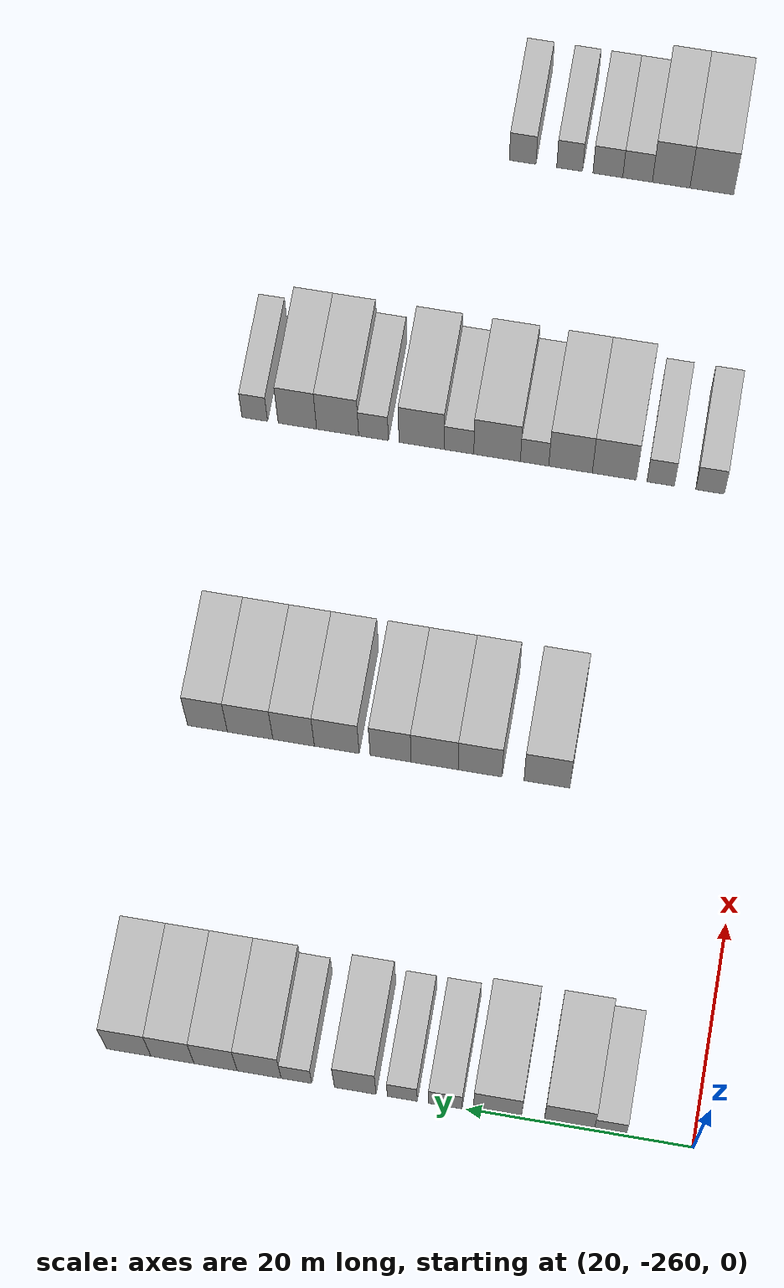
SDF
<sdf version="1.6">
 <world name="default">
  <model name="building_52">
   <static>1</static>
   <pose>25.0000 -252.6086 0 0.000000 0.000000 0.000000</pose>
   <link name="link">
    <pose>0 0 3.00 0 0 0</pose>
    <collision name="collision"><geometry><box><size>10.0000 2.7881 6.0000</size></box></geometry></collision>
    <visual name="visual">
     <cast_shadows>0</cast_shadows>
     <geometry><box><size>10.0000 2.7881 6.0000</size></box></geometry>
     <material>
      <script>
       <uri>model://HANNAS_wall/materials/scripts</uri>
       <uri>model://HANNAS_wall/materials/textures</uri>
       <name>vrc/HANNAS_wall</name>
      </script>
     </material>
    </visual>
   </link>
  </model>
  <model name="building_53">
   <static>1</static>
   <pose>25.0000 -249.0260 0 0.000000 0.000000 0.000000</pose>
   <link name="link">
    <pose>0 0 4.50 0 0 0</pose>
    <collision name="collision"><geometry><box><size>10.0000 4.3770 9.0000</size></box></geometry></collision>
    <visual name="visual">
     <cast_shadows>0</cast_shadows>
     <geometry><box><size>10.0000 4.3770 9.0000</size></box></geometry>
     <material>
      <script>
       <uri>model://HANNAS_wall/materials/scripts</uri>
       <uri>model://HANNAS_wall/materials/textures</uri>
       <name>vrc/HANNAS_wall</name>
      </script>
     </material>
    </visual>
   </link>
  </model>
  <model name="building_54">
   <static>1</static>
   <pose>25.0000 -242.7408 0 0.000000 0.000000 0.000000</pose>
   <link name="link">
    <pose>0 0 4.50 0 0 0</pose>
    <collision name="collision"><geometry><box><size>10.0000 4.1934 9.0000</size></box></geometry></collision>
    <visual name="visual">
     <cast_shadows>0</cast_shadows>
     <geometry><box><size>10.0000 4.1934 9.0000</size></box></geometry>
     <material>
      <script>
       <uri>model://HANNAS_wall/materials/scripts</uri>
       <uri>model://HANNAS_wall/materials/textures</uri>
       <name>vrc/HANNAS_wall</name>
      </script>
     </material>
    </visual>
   </link>
  </model>
  <model name="building_55">
   <static>1</static>
   <pose>25.0000 -238.1700 0 0.000000 0.000000 0.000000</pose>
   <link name="link">
    <pose>0 0 3.00 0 0 0</pose>
    <collision name="collision"><geometry><box><size>10.0000 2.9482 6.0000</size></box></geometry></collision>
    <visual name="visual">
     <cast_shadows>0</cast_shadows>
     <geometry><box><size>10.0000 2.9482 6.0000</size></box></geometry>
     <material>
      <script>
       <uri>model://HANNAS_wall/materials/scripts</uri>
       <uri>model://HANNAS_wall/materials/textures</uri>
       <name>vrc/HANNAS_wall</name>
      </script>
     </material>
    </visual>
   </link>
  </model>
  <model name="building_56">
   <static>1</static>
   <pose>25.0000 -234.3784 0 0.000000 0.000000 0.000000</pose>
   <link name="link">
    <pose>0 0 3.00 0 0 0</pose>
    <collision name="collision"><geometry><box><size>10.0000 2.6350 6.0000</size></box></geometry></collision>
    <visual name="visual">
     <cast_shadows>0</cast_shadows>
     <geometry><box><size>10.0000 2.6350 6.0000</size></box></geometry>
     <material>
      <script>
       <uri>model://HANNAS_wall/materials/scripts</uri>
       <uri>model://HANNAS_wall/materials/textures</uri>
       <name>vrc/HANNAS_wall</name>
      </script>
     </material>
    </visual>
   </link>
  </model>
  <model name="building_57">
   <static>1</static>
   <pose>25.0000 -230.2231 0 0.000000 0.000000 0.000000</pose>
   <link name="link">
    <pose>0 0 4.50 0 0 0</pose>
    <collision name="collision"><geometry><box><size>10.0000 3.6756 9.0000</size></box></geometry></collision>
    <visual name="visual">
     <cast_shadows>0</cast_shadows>
     <geometry><box><size>10.0000 3.6756 9.0000</size></box></geometry>
     <material>
      <script>
       <uri>model://HANNAS_wall/materials/scripts</uri>
       <uri>model://HANNAS_wall/materials/textures</uri>
       <name>vrc/HANNAS_wall</name>
      </script>
     </material>
    </visual>
   </link>
  </model>
  <model name="building_58">
   <static>1</static>
   <pose>25.0000 -225.0237 0 0.000000 0.000000 0.000000</pose>
   <link name="link">
    <pose>0 0 3.00 0 0 0</pose>
    <collision name="collision"><geometry><box><size>10.0000 2.7231 6.0000</size></box></geometry></collision>
    <visual name="visual">
     <cast_shadows>0</cast_shadows>
     <geometry><box><size>10.0000 2.7231 6.0000</size></box></geometry>
     <material>
      <script>
       <uri>model://HANNAS_wall/materials/scripts</uri>
       <uri>model://HANNAS_wall/materials/textures</uri>
       <name>vrc/HANNAS_wall</name>
      </script>
     </material>
    </visual>
   </link>
  </model>
  <model name="building_59">
   <static>1</static>
   <pose>25.0000 -221.7079 0 0.000000 0.000000 0.000000</pose>
   <link name="link">
    <pose>0 0 4.50 0 0 0</pose>
    <collision name="collision"><geometry><box><size>10.0000 3.9086 9.0000</size></box></geometry></collision>
    <visual name="visual">
     <cast_shadows>0</cast_shadows>
     <geometry><box><size>10.0000 3.9086 9.0000</size></box></geometry>
     <material>
      <script>
       <uri>model://HANNAS_wall/materials/scripts</uri>
       <uri>model://HANNAS_wall/materials/textures</uri>
       <name>vrc/HANNAS_wall</name>
      </script>
     </material>
    </visual>
   </link>
  </model>
  <model name="building_60">
   <static>1</static>
   <pose>25.0000 -217.8412 0 0.000000 0.000000 0.000000</pose>
   <link name="link">
    <pose>0 0 4.50 0 0 0</pose>
    <collision name="collision"><geometry><box><size>10.0000 3.8248 9.0000</size></box></geometry></collision>
    <visual name="visual">
     <cast_shadows>0</cast_shadows>
     <geometry><box><size>10.0000 3.8248 9.0000</size></box></geometry>
     <material>
      <script>
       <uri>model://HANNAS_wall/materials/scripts</uri>
       <uri>model://HANNAS_wall/materials/textures</uri>
       <name>vrc/HANNAS_wall</name>
      </script>
     </material>
    </visual>
   </link>
  </model>
  <model name="building_61">
   <static>1</static>
   <pose>25.0000 -214.0150 0 0.000000 0.000000 0.000000</pose>
   <link name="link">
    <pose>0 0 4.50 0 0 0</pose>
    <collision name="collision"><geometry><box><size>10.0000 3.8276 9.0000</size></box></geometry></collision>
    <visual name="visual">
     <cast_shadows>0</cast_shadows>
     <geometry><box><size>10.0000 3.8276 9.0000</size></box></geometry>
     <material>
      <script>
       <uri>model://HANNAS_wall/materials/scripts</uri>
       <uri>model://HANNAS_wall/materials/textures</uri>
       <name>vrc/HANNAS_wall</name>
      </script>
     </material>
    </visual>
   </link>
  </model>
  <model name="building_62">
   <static>1</static>
   <pose>25.0000 -210.1196 0 0.000000 0.000000 0.000000</pose>
   <link name="link">
    <pose>0 0 4.50 0 0 0</pose>
    <collision name="collision"><geometry><box><size>10.0000 3.9632 9.0000</size></box></geometry></collision>
    <visual name="visual">
     <cast_shadows>0</cast_shadows>
     <geometry><box><size>10.0000 3.9632 9.0000</size></box></geometry>
     <material>
      <script>
       <uri>model://HANNAS_wall/materials/scripts</uri>
       <uri>model://HANNAS_wall/materials/textures</uri>
       <name>vrc/HANNAS_wall</name>
      </script>
     </material>
    </visual>
   </link>
  </model>
  <model name="building_270">
   <static>1</static>
   <pose>55.0000 -242.3159 0 0.000000 0.000000 0.000000</pose>
   <link name="link">
    <pose>0 0 4.50 0 0 0</pose>
    <collision name="collision"><geometry><box><size>10.0000 4.1535 9.0000</size></box></geometry></collision>
    <visual name="visual">
     <cast_shadows>0</cast_shadows>
     <geometry><box><size>10.0000 4.1535 9.0000</size></box></geometry>
     <material>
      <script>
       <uri>model://HANNAS_wall/materials/scripts</uri>
       <uri>model://HANNAS_wall/materials/textures</uri>
       <name>vrc/HANNAS_wall</name>
      </script>
     </material>
    </visual>
   </link>
  </model>
  <model name="building_271">
   <static>1</static>
   <pose>55.0000 -236.2451 0 0.000000 0.000000 0.000000</pose>
   <link name="link">
    <pose>0 0 4.50 0 0 0</pose>
    <collision name="collision"><geometry><box><size>10.0000 3.9879 9.0000</size></box></geometry></collision>
    <visual name="visual">
     <cast_shadows>0</cast_shadows>
     <geometry><box><size>10.0000 3.9879 9.0000</size></box></geometry>
     <material>
      <script>
       <uri>model://HANNAS_wall/materials/scripts</uri>
       <uri>model://HANNAS_wall/materials/textures</uri>
       <name>vrc/HANNAS_wall</name>
      </script>
     </material>
    </visual>
   </link>
  </model>
  <model name="building_272">
   <static>1</static>
   <pose>55.0000 -232.1145 0 0.000000 0.000000 0.000000</pose>
   <link name="link">
    <pose>0 0 4.50 0 0 0</pose>
    <collision name="collision"><geometry><box><size>10.0000 4.2734 9.0000</size></box></geometry></collision>
    <visual name="visual">
     <cast_shadows>0</cast_shadows>
     <geometry><box><size>10.0000 4.2734 9.0000</size></box></geometry>
     <material>
      <script>
       <uri>model://HANNAS_wall/materials/scripts</uri>
       <uri>model://HANNAS_wall/materials/textures</uri>
       <name>vrc/HANNAS_wall</name>
      </script>
     </material>
    </visual>
   </link>
  </model>
  <model name="building_273">
   <static>1</static>
   <pose>55.0000 -228.1108 0 0.000000 0.000000 0.000000</pose>
   <link name="link">
    <pose>0 0 4.50 0 0 0</pose>
    <collision name="collision"><geometry><box><size>10.0000 3.7338 9.0000</size></box></geometry></collision>
    <visual name="visual">
     <cast_shadows>0</cast_shadows>
     <geometry><box><size>10.0000 3.7338 9.0000</size></box></geometry>
     <material>
      <script>
       <uri>model://HANNAS_wall/materials/scripts</uri>
       <uri>model://HANNAS_wall/materials/textures</uri>
       <name>vrc/HANNAS_wall</name>
      </script>
     </material>
    </visual>
   </link>
  </model>
  <model name="building_274">
   <static>1</static>
   <pose>55.0000 -223.1934 0 0.000000 0.000000 0.000000</pose>
   <link name="link">
    <pose>0 0 4.50 0 0 0</pose>
    <collision name="collision"><geometry><box><size>10.0000 4.1011 9.0000</size></box></geometry></collision>
    <visual name="visual">
     <cast_shadows>0</cast_shadows>
     <geometry><box><size>10.0000 4.1011 9.0000</size></box></geometry>
     <material>
      <script>
       <uri>model://HANNAS_wall/materials/scripts</uri>
       <uri>model://HANNAS_wall/materials/textures</uri>
       <name>vrc/HANNAS_wall</name>
      </script>
     </material>
    </visual>
   </link>
  </model>
  <model name="building_275">
   <static>1</static>
   <pose>55.0000 -219.2500 0 0.000000 0.000000 0.000000</pose>
   <link name="link">
    <pose>0 0 4.50 0 0 0</pose>
    <collision name="collision"><geometry><box><size>10.0000 3.7855 9.0000</size></box></geometry></collision>
    <visual name="visual">
     <cast_shadows>0</cast_shadows>
     <geometry><box><size>10.0000 3.7855 9.0000</size></box></geometry>
     <material>
      <script>
       <uri>model://HANNAS_wall/materials/scripts</uri>
       <uri>model://HANNAS_wall/materials/textures</uri>
       <name>vrc/HANNAS_wall</name>
      </script>
     </material>
    </visual>
   </link>
  </model>
  <model name="building_276">
   <static>1</static>
   <pose>55.0000 -215.2727 0 0.000000 0.000000 0.000000</pose>
   <link name="link">
    <pose>0 0 4.50 0 0 0</pose>
    <collision name="collision"><geometry><box><size>10.0000 4.1691 9.0000</size></box></geometry></collision>
    <visual name="visual">
     <cast_shadows>0</cast_shadows>
     <geometry><box><size>10.0000 4.1691 9.0000</size></box></geometry>
     <material>
      <script>
       <uri>model://HANNAS_wall/materials/scripts</uri>
       <uri>model://HANNAS_wall/materials/textures</uri>
       <name>vrc/HANNAS_wall</name>
      </script>
     </material>
    </visual>
   </link>
  </model>
  <model name="building_277">
   <static>1</static>
   <pose>55.0000 -211.3649 0 0.000000 0.000000 0.000000</pose>
   <link name="link">
    <pose>0 0 4.50 0 0 0</pose>
    <collision name="collision"><geometry><box><size>10.0000 3.6465 9.0000</size></box></geometry></collision>
    <visual name="visual">
     <cast_shadows>0</cast_shadows>
     <geometry><box><size>10.0000 3.6465 9.0000</size></box></geometry>
     <material>
      <script>
       <uri>model://HANNAS_wall/materials/scripts</uri>
       <uri>model://HANNAS_wall/materials/textures</uri>
       <name>vrc/HANNAS_wall</name>
      </script>
     </material>
    </visual>
   </link>
  </model>
  <model name="building_491">
   <static>1</static>
   <pose>85.0000 -252.7439 0 0.000000 0.000000 0.000000</pose>
   <link name="link">
    <pose>0 0 3.00 0 0 0</pose>
    <collision name="collision"><geometry><box><size>10.0000 2.6553 6.0000</size></box></geometry></collision>
    <visual name="visual">
     <cast_shadows>0</cast_shadows>
     <geometry><box><size>10.0000 2.6553 6.0000</size></box></geometry>
     <material>
      <script>
       <uri>model://HANNAS_wall/materials/scripts</uri>
       <uri>model://HANNAS_wall/materials/textures</uri>
       <name>vrc/HANNAS_wall</name>
      </script>
     </material>
    </visual>
   </link>
  </model>
  <model name="building_492">
   <static>1</static>
   <pose>85.0000 -248.1430 0 0.000000 0.000000 0.000000</pose>
   <link name="link">
    <pose>0 0 3.00 0 0 0</pose>
    <collision name="collision"><geometry><box><size>10.0000 2.5466 6.0000</size></box></geometry></collision>
    <visual name="visual">
     <cast_shadows>0</cast_shadows>
     <geometry><box><size>10.0000 2.5466 6.0000</size></box></geometry>
     <material>
      <script>
       <uri>model://HANNAS_wall/materials/scripts</uri>
       <uri>model://HANNAS_wall/materials/textures</uri>
       <name>vrc/HANNAS_wall</name>
      </script>
     </material>
    </visual>
   </link>
  </model>
  <model name="building_493">
   <static>1</static>
   <pose>85.0000 -243.8154 0 0.000000 0.000000 0.000000</pose>
   <link name="link">
    <pose>0 0 4.50 0 0 0</pose>
    <collision name="collision"><geometry><box><size>10.0000 4.1085 9.0000</size></box></geometry></collision>
    <visual name="visual">
     <cast_shadows>0</cast_shadows>
     <geometry><box><size>10.0000 4.1085 9.0000</size></box></geometry>
     <material>
      <script>
       <uri>model://HANNAS_wall/materials/scripts</uri>
       <uri>model://HANNAS_wall/materials/textures</uri>
       <name>vrc/HANNAS_wall</name>
      </script>
     </material>
    </visual>
   </link>
  </model>
  <model name="building_494">
   <static>1</static>
   <pose>85.0000 -239.7273 0 0.000000 0.000000 0.000000</pose>
   <link name="link">
    <pose>0 0 4.50 0 0 0</pose>
    <collision name="collision"><geometry><box><size>10.0000 4.0676 9.0000</size></box></geometry></collision>
    <visual name="visual">
     <cast_shadows>0</cast_shadows>
     <geometry><box><size>10.0000 4.0676 9.0000</size></box></geometry>
     <material>
      <script>
       <uri>model://HANNAS_wall/materials/scripts</uri>
       <uri>model://HANNAS_wall/materials/textures</uri>
       <name>vrc/HANNAS_wall</name>
      </script>
     </material>
    </visual>
   </link>
  </model>
  <model name="building_495">
   <static>1</static>
   <pose>85.0000 -236.3643 0 0.000000 0.000000 0.000000</pose>
   <link name="link">
    <pose>0 0 3.00 0 0 0</pose>
    <collision name="collision"><geometry><box><size>10.0000 2.6585 6.0000</size></box></geometry></collision>
    <visual name="visual">
     <cast_shadows>0</cast_shadows>
     <geometry><box><size>10.0000 2.6585 6.0000</size></box></geometry>
     <material>
      <script>
       <uri>model://HANNAS_wall/materials/scripts</uri>
       <uri>model://HANNAS_wall/materials/textures</uri>
       <name>vrc/HANNAS_wall</name>
      </script>
     </material>
    </visual>
   </link>
  </model>
  <model name="building_496">
   <static>1</static>
   <pose>85.0000 -232.8538 0 0.000000 0.000000 0.000000</pose>
   <link name="link">
    <pose>0 0 4.50 0 0 0</pose>
    <collision name="collision"><geometry><box><size>10.0000 4.3626 9.0000</size></box></geometry></collision>
    <visual name="visual">
     <cast_shadows>0</cast_shadows>
     <geometry><box><size>10.0000 4.3626 9.0000</size></box></geometry>
     <material>
      <script>
       <uri>model://HANNAS_wall/materials/scripts</uri>
       <uri>model://HANNAS_wall/materials/textures</uri>
       <name>vrc/HANNAS_wall</name>
      </script>
     </material>
    </visual>
   </link>
  </model>
  <model name="building_497">
   <static>1</static>
   <pose>85.0000 -229.2953 0 0.000000 0.000000 0.000000</pose>
   <link name="link">
    <pose>0 0 3.00 0 0 0</pose>
    <collision name="collision"><geometry><box><size>10.0000 2.7544 6.0000</size></box></geometry></collision>
    <visual name="visual">
     <cast_shadows>0</cast_shadows>
     <geometry><box><size>10.0000 2.7544 6.0000</size></box></geometry>
     <material>
      <script>
       <uri>model://HANNAS_wall/materials/scripts</uri>
       <uri>model://HANNAS_wall/materials/textures</uri>
       <name>vrc/HANNAS_wall</name>
      </script>
     </material>
    </visual>
   </link>
  </model>
  <model name="building_498">
   <static>1</static>
   <pose>85.0000 -225.7877 0 0.000000 0.000000 0.000000</pose>
   <link name="link">
    <pose>0 0 4.50 0 0 0</pose>
    <collision name="collision"><geometry><box><size>10.0000 4.2606 9.0000</size></box></geometry></collision>
    <visual name="visual">
     <cast_shadows>0</cast_shadows>
     <geometry><box><size>10.0000 4.2606 9.0000</size></box></geometry>
     <material>
      <script>
       <uri>model://HANNAS_wall/materials/scripts</uri>
       <uri>model://HANNAS_wall/materials/textures</uri>
       <name>vrc/HANNAS_wall</name>
      </script>
     </material>
    </visual>
   </link>
  </model>
  <model name="building_499">
   <static>1</static>
   <pose>85.0000 -221.2589 0 0.000000 0.000000 0.000000</pose>
   <link name="link">
    <pose>0 0 3.00 0 0 0</pose>
    <collision name="collision"><geometry><box><size>10.0000 2.7971 6.0000</size></box></geometry></collision>
    <visual name="visual">
     <cast_shadows>0</cast_shadows>
     <geometry><box><size>10.0000 2.7971 6.0000</size></box></geometry>
     <material>
      <script>
       <uri>model://HANNAS_wall/materials/scripts</uri>
       <uri>model://HANNAS_wall/materials/textures</uri>
       <name>vrc/HANNAS_wall</name>
      </script>
     </material>
    </visual>
   </link>
  </model>
  <model name="building_500">
   <static>1</static>
   <pose>85.0000 -217.8777 0 0.000000 0.000000 0.000000</pose>
   <link name="link">
    <pose>0 0 4.50 0 0 0</pose>
    <collision name="collision"><geometry><box><size>10.0000 3.9654 9.0000</size></box></geometry></collision>
    <visual name="visual">
     <cast_shadows>0</cast_shadows>
     <geometry><box><size>10.0000 3.9654 9.0000</size></box></geometry>
     <material>
      <script>
       <uri>model://HANNAS_wall/materials/scripts</uri>
       <uri>model://HANNAS_wall/materials/textures</uri>
       <name>vrc/HANNAS_wall</name>
      </script>
     </material>
    </visual>
   </link>
  </model>
  <model name="building_501">
   <static>1</static>
   <pose>85.0000 -214.0881 0 0.000000 0.000000 0.000000</pose>
   <link name="link">
    <pose>0 0 4.50 0 0 0</pose>
    <collision name="collision"><geometry><box><size>10.0000 3.6137 9.0000</size></box></geometry></collision>
    <visual name="visual">
     <cast_shadows>0</cast_shadows>
     <geometry><box><size>10.0000 3.6137 9.0000</size></box></geometry>
     <material>
      <script>
       <uri>model://HANNAS_wall/materials/scripts</uri>
       <uri>model://HANNAS_wall/materials/textures</uri>
       <name>vrc/HANNAS_wall</name>
      </script>
     </material>
    </visual>
   </link>
  </model>
  <model name="building_502">
   <static>1</static>
   <pose>85.0000 -210.0743 0 0.000000 0.000000 0.000000</pose>
   <link name="link">
    <pose>0 0 3.00 0 0 0</pose>
    <collision name="collision"><geometry><box><size>10.0000 2.4140 6.0000</size></box></geometry></collision>
    <visual name="visual">
     <cast_shadows>0</cast_shadows>
     <geometry><box><size>10.0000 2.4140 6.0000</size></box></geometry>
     <material>
      <script>
       <uri>model://HANNAS_wall/materials/scripts</uri>
       <uri>model://HANNAS_wall/materials/textures</uri>
       <name>vrc/HANNAS_wall</name>
      </script>
     </material>
    </visual>
   </link>
  </model>
  <model name="building_722">
   <static>1</static>
   <pose>115.0000 -248.5770 0 0.000000 0.000000 0.000000</pose>
   <link name="link">
    <pose>0 0 4.50 0 0 0</pose>
    <collision name="collision"><geometry><box><size>10.0000 4.1924 9.0000</size></box></geometry></collision>
    <visual name="visual">
     <cast_shadows>0</cast_shadows>
     <geometry><box><size>10.0000 4.1924 9.0000</size></box></geometry>
     <material>
      <script>
       <uri>model://HANNAS_wall/materials/scripts</uri>
       <uri>model://HANNAS_wall/materials/textures</uri>
       <name>vrc/HANNAS_wall</name>
      </script>
     </material>
    </visual>
   </link>
  </model>
  <model name="building_723">
   <static>1</static>
   <pose>115.0000 -244.6760 0 0.000000 0.000000 0.000000</pose>
   <link name="link">
    <pose>0 0 4.50 0 0 0</pose>
    <collision name="collision"><geometry><box><size>10.0000 3.6095 9.0000</size></box></geometry></collision>
    <visual name="visual">
     <cast_shadows>0</cast_shadows>
     <geometry><box><size>10.0000 3.6095 9.0000</size></box></geometry>
     <material>
      <script>
       <uri>model://HANNAS_wall/materials/scripts</uri>
       <uri>model://HANNAS_wall/materials/textures</uri>
       <name>vrc/HANNAS_wall</name>
      </script>
     </material>
    </visual>
   </link>
  </model>
  <model name="building_724">
   <static>1</static>
   <pose>115.0000 -241.4489 0 0.000000 0.000000 0.000000</pose>
   <link name="link">
    <pose>0 0 3.00 0 0 0</pose>
    <collision name="collision"><geometry><box><size>10.0000 2.8448 6.0000</size></box></geometry></collision>
    <visual name="visual">
     <cast_shadows>0</cast_shadows>
     <geometry><box><size>10.0000 2.8448 6.0000</size></box></geometry>
     <material>
      <script>
       <uri>model://HANNAS_wall/materials/scripts</uri>
       <uri>model://HANNAS_wall/materials/textures</uri>
       <name>vrc/HANNAS_wall</name>
      </script>
     </material>
    </visual>
   </link>
  </model>
  <model name="building_725">
   <static>1</static>
   <pose>115.0000 -238.5916 0 0.000000 0.000000 0.000000</pose>
   <link name="link">
    <pose>0 0 3.00 0 0 0</pose>
    <collision name="collision"><geometry><box><size>10.0000 2.8697 6.0000</size></box></geometry></collision>
    <visual name="visual">
     <cast_shadows>0</cast_shadows>
     <geometry><box><size>10.0000 2.8697 6.0000</size></box></geometry>
     <material>
      <script>
       <uri>model://HANNAS_wall/materials/scripts</uri>
       <uri>model://HANNAS_wall/materials/textures</uri>
       <name>vrc/HANNAS_wall</name>
      </script>
     </material>
    </visual>
   </link>
  </model>
  <model name="building_726">
   <static>1</static>
   <pose>115.0000 -234.9141 0 0.000000 0.000000 0.000000</pose>
   <link name="link">
    <pose>0 0 3.00 0 0 0</pose>
    <collision name="collision"><geometry><box><size>10.0000 2.4853 6.0000</size></box></geometry></collision>
    <visual name="visual">
     <cast_shadows>0</cast_shadows>
     <geometry><box><size>10.0000 2.4853 6.0000</size></box></geometry>
     <material>
      <script>
       <uri>model://HANNAS_wall/materials/scripts</uri>
       <uri>model://HANNAS_wall/materials/textures</uri>
       <name>vrc/HANNAS_wall</name>
      </script>
     </material>
    </visual>
   </link>
  </model>
  <model name="building_727">
   <static>1</static>
   <pose>115.0000 -230.3896 0 0.000000 0.000000 0.000000</pose>
   <link name="link">
    <pose>0 0 3.00 0 0 0</pose>
    <collision name="collision"><geometry><box><size>10.0000 2.5637 6.0000</size></box></geometry></collision>
    <visual name="visual">
     <cast_shadows>0</cast_shadows>
     <geometry><box><size>10.0000 2.5637 6.0000</size></box></geometry>
     <material>
      <script>
       <uri>model://HANNAS_wall/materials/scripts</uri>
       <uri>model://HANNAS_wall/materials/textures</uri>
       <name>vrc/HANNAS_wall</name>
      </script>
     </material>
    </visual>
   </link>
  </model>
 </world>
</sdf>
